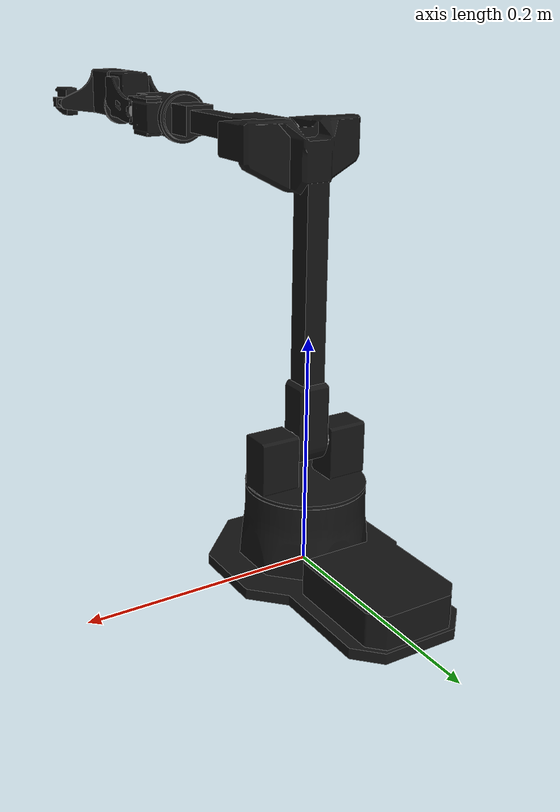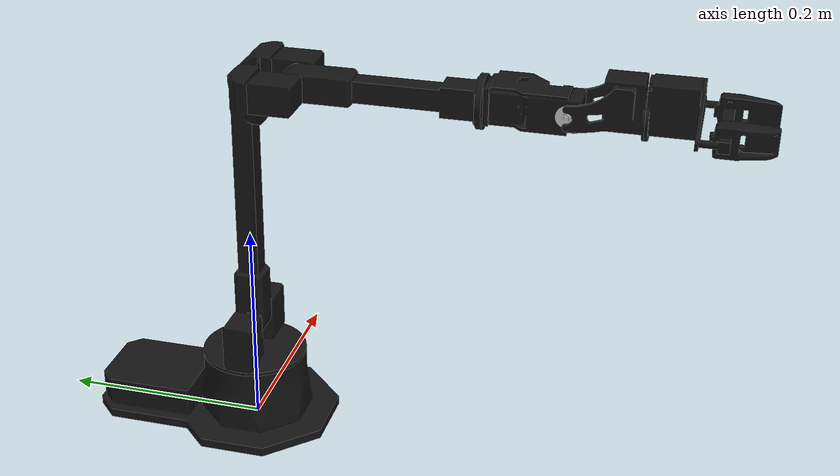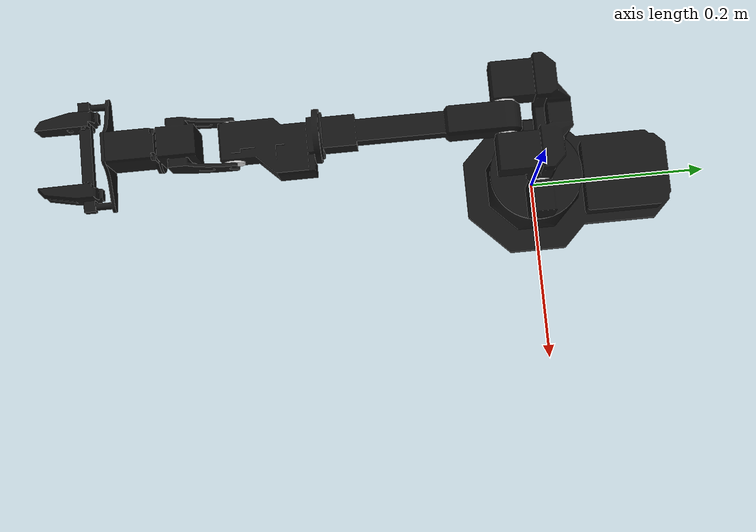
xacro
<?xml version="1.0"?>
<robot name="wx250s" xmlns:xacro="http://ros.org/wiki/xacro">

  <xacro:include filename="$(find wx250s_description)/urdf/parts/base/base.xacro"/>
  <xacro:include filename="$(find wx250s_description)/urdf/parts/shoulder/shoulder.xacro"/>
  <xacro:include filename="$(find wx250s_description)/urdf/parts/upper_arm/upper_arm.xacro"/>
  <xacro:include filename="$(find wx250s_description)/urdf/parts/forearm/forearm.xacro"/>
  <xacro:include filename="$(find wx250s_description)/urdf/parts/upper_forearm/upper_forearm.xacro"/>
  <xacro:include filename="$(find wx250s_description)/urdf/parts/lower_forearm/lower_forearm.xacro"/>
  <xacro:include filename="$(find wx250s_description)/urdf/parts/wrist/wrist.xacro"/>
  <xacro:include filename="$(find wx250s_description)/urdf/parts/gripper/gripper.xacro"/>
  <xacro:include filename="$(find wx250s_description)/urdf/parts/gripper_bar/gripper_bar.xacro"/>
  <xacro:include filename="$(find wx250s_description)/urdf/parts/left_finger/left_finger.xacro"/>
  <xacro:include filename="$(find wx250s_description)/urdf/parts/right_finger/right_finger.xacro"/>

  <xacro:property name="PI" value="3.14159274"/>

  <link name="world"/>
  <xacro:base parent="world">
    <origin xyz="0 0 0" rpy="0 0 0" />
  </xacro:base>

  <xacro:sholder parent="base_link">
    <origin xyz="0.0 0.0 0.069" rpy="0 0 0" /> <!-- xyz="0.0 0.0 0.072" -->
    <axis xyz="0 0 1"/>
  </xacro:sholder>

  <xacro:upper_arm parent="sholder_link">
    <origin xyz="0.0 0.0 0.03865" rpy="0 0 0" />
    <axis xyz="1 0 0"/>
  </xacro:upper_arm>

  <xacro:upper_forearm parent="upper_arm_link">
    <origin xyz="0 -0.04975 0.25" rpy="0 0 ${-PI/2}" />
    <axis xyz="0 1 0"/>
  </xacro:upper_forearm>

  <xacro:lower_forearm parent="upper_forearm_link">
    <origin xyz="0.171 0 0" rpy="${PI} 0 0" />
    <axis xyz="1 0 0"/>
  </xacro:lower_forearm>

  <xacro:wrist parent="lower_forearm_link">
    <origin xyz="0.075 0 0" rpy="0 ${PI} ${PI/2}" />
    <axis xyz="1 0 0"/>
  </xacro:wrist>

  <xacro:gripper parent="wrist_link">
    <origin xyz="0 -0.161 0" rpy="0 0 0" /> <!-- xyz="0 -0.065 0" -->
    <axis xyz="0 1 0"/>
  </xacro:gripper>

  <xacro:gripper_bar parent="gripper_link">
    <origin xyz="0 0 0" rpy="0 0 0" /> <!-- xyz="-0.0145 0 0" -->
  </xacro:gripper_bar>

  <xacro:left_finger parent="gripper_bar_link">
    <origin xyz="0.04 0.03 0" rpy="0 0 ${PI/2}" />
    <axis xyz="0 1 0"/>
  </xacro:left_finger>

  <xacro:right_finger parent="gripper_bar_link">
    <origin xyz="-0.04 0.03 0" rpy="${PI} 0 ${PI/2}" />
    <axis xyz="0 1 0"/>
  </xacro:right_finger>

</robot>

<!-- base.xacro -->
<robot xmlns:xacro="http://ros.org/wiki/xacro">

  <xacro:macro name="base" params="parent *joint_origin">
	  <joint name="base_link_joint" type="fixed">
	    <xacro:insert_block name="joint_origin"/>
	    <parent link="${parent}"/>
	    <child link="base_link"/>
	  </joint>

	<link name="base_link">
	  <visual>
		  <geometry>
		    <mesh filename="package://wx250s_description/meshes/DAE/base/base.dae"/>
		  </geometry>
	  </visual>
	  <collision>
		  <geometry>
		    <mesh filename="package://wx250s_description/meshes/STL/base/base.stl"/>
		  </geometry>
	  </collision>
	  <inertial>
		  <origin xyz="0 0 0"/>
		  <mass value="27"/>
		<inertia ixx="2.91" ixy="0" ixz="0" iyy="18.03" iyz="0" izz="20.95" />
	  </inertial>
          <surface>
            <friction>
              <ode>
                <mu>0.8</mu>
                <mu2>0.8</mu2>
                <kp>1e15</kp>
                <kd>1e13</kd>
              </ode>
            </friction>
            <bounce>
              <restitution_coefficient>0.01</restitution_coefficient>
              <threshold>10</threshold>
            </bounce>
            <contact>
              <ode>
                <max_vel>0.01</max_vel>
                <minDepth>0</minDepth>
                <contact_surface_layer>0</contact_surface_layer>
              </ode>
            </contact>
          </surface>
	</link>
  </xacro:macro>

</robot>

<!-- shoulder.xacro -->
<robot xmlns:xacro="http://ros.org/wiki/xacro">

  <xacro:macro name="sholder" params="parent *joint_origin *joint_axis">
	<joint name="waist" type="revolute">
	  <xacro:insert_block name="joint_origin"/>
	  <parent link="${parent}"/>
	  <child link="sholder_link"/>
          <limit effort="100" velocity="100" lower="-3.14" upper = "3.14"/>
          <dynamics damping="0.1" friction="0.1"/>
	  <xacro:insert_block name="joint_axis"/>
	</joint>

	<link name="sholder_link">
	  <visual>
		  <geometry>
		    <mesh filename="package://wx250s_description/meshes/DAE/shoulder/shoulder.dae"/>
		  </geometry>
	  </visual>
	  <collision>
		  <geometry>
		    <mesh filename="package://wx250s_description/meshes/STL/shoulder/shoulder.stl"/>
		  </geometry>
	  </collision>
	  <inertial>
		<origin xyz="0.0000223482 0.0000414609 0.0066287000"/>
		<mass value="0.480879"/>
		<inertia ixx="0.222" ixy="0" ixz="0" iyy="0.395" iyz="0" izz="0.222"/>
	  </inertial>
          <surface>
            <friction>
              <ode>
                <mu1>1.2</mu1>
                <mu2>1.2</mu2>
                <kp>1e15</kp>
                <kd>1e13</kd>
              </ode>
            </friction>
            <bounce>
              <restitution_coefficient>0.01</restitution_coefficient>
              <threshold>0</threshold>
            </bounce>
            <contact>
              <ode>
                <max_vel>10</max_vel>
              </ode>
            </contact>
          </surface>
	</link>
  </xacro:macro>

</robot>

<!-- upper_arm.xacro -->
<robot xmlns:xacro="http://ros.org/wiki/xacro">

  <xacro:macro name="upper_arm" params="parent *joint_origin *joint_axis">
	<joint name="sholder" type="revolute">
	  <xacro:insert_block name="joint_origin"/>
	  <parent link="${parent}"/>
	  <child link="upper_arm_link"/>
          <limit effort="100" velocity="100" lower="-3.14" upper = "3.14"/>
          <dynamics damping="0.1" friction="0.1"/>
	  <xacro:insert_block name="joint_axis"/>
	</joint>

	<link name="upper_arm_link">
	  <visual>
		  <geometry>
		    <mesh filename="package://wx250s_description/meshes/DAE/upper_arm/upper_arm.dae"/>
		  </geometry>
	  </visual>
	  <collision>
		  <geometry>
		    <mesh filename="package://wx250s_description/meshes/STL/upper_arm/upper_arm.stl"/>
		  </geometry>
	  </collision>
	  <inertial>
		<origin xyz="0.0 0.0 0.0"/>
		<mass value="0.298"/>
		<inertia ixx="0.002176" ixy="-0.0000030658" ixz="0.0" iyy="0.00005757" iyz="0.0" izz="0.002186"/>
	  </inertial>
          <surface>
            <friction>
              <ode>
                <mu1>1.2</mu1>
                <mu2>1.2</mu2>
                <kp>1e15</kp>
                <kd>1e13</kd>
              </ode>
            </friction>
            <bounce>
              <restitution_coefficient>0.01</restitution_coefficient>
              <threshold>0</threshold>
            </bounce>
            <contact>
              <ode>
                <max_vel>10</max_vel>
              </ode>
            </contact>
          </surface>
	</link>
  </xacro:macro>

</robot>

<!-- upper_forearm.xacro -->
<robot xmlns:xacro="http://ros.org/wiki/xacro">

  <xacro:macro name="upper_forearm" params="parent *joint_origin *joint_axis">
	<joint name="elbow" type="revolute">
	  <xacro:insert_block name="joint_origin"/>
	  <parent link="${parent}"/>
	  <child link="upper_forearm_link"/>
          <limit effort="100" velocity="100" lower="-3.14" upper = "3.14"/>
          <dynamics damping="0.1" friction="0.1"/>
	  <xacro:insert_block name="joint_axis"/>
	</joint>

	<link name="upper_forearm_link">
	  <visual>
		  <geometry>
		    <mesh filename="package://wx250s_description/meshes/DAE/upper_forearm/upper_forearm.dae"/>
		  </geometry>
	  </visual>
	  <collision>
		  <geometry>
		    <mesh filename="package://wx250s_description/meshes/STL/upper_forearm/upper_forearm.stl"/>
		  </geometry>
	  </collision>
	  <inertial>
		<origin xyz="0.1079630000 0.0001158760 0"/>
		<mass value="0.234589"/>
		<inertia ixx="0.00003971" ixy="0.0000023528" ixz="0.0" iyy="0.0008878" iyz="0.0" izz="0.000888"/>
	  </inertial>
          <surface>
            <friction>
              <ode>
                <mu1>1.2</mu1>
                <mu2>1.2</mu2>
                <kp>1e15</kp>
                <kd>1e13</kd>
              </ode>
            </friction>
            <bounce>
              <restitution_coefficient>0.01</restitution_coefficient>
              <threshold>0</threshold>
            </bounce>
            <contact>
              <ode>
                <max_vel>10</max_vel>
              </ode>
            </contact>
          </surface>
	</link>
  </xacro:macro>

</robot>

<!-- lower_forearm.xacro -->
<robot xmlns:xacro="http://ros.org/wiki/xacro">

  <xacro:macro name="lower_forearm" params="parent *joint_origin *joint_axis">
	<joint name="forearm_roll" type="revolute">
	  <xacro:insert_block name="joint_origin"/>
	  <parent link="${parent}"/>
	  <child link="lower_forearm_link"/>
          <limit effort="100" velocity="100" lower="-3.14" upper = "3.14"/>
          <dynamics damping="0.1" friction="0.1"/>
	  <xacro:insert_block name="joint_axis"/>
	</joint>

	<link name="lower_forearm_link">
	  <visual>
		  <geometry>
		    <mesh filename="package://wx250s_description/meshes/DAE/lower_forearm/lower_forearm.dae"/>
		  </geometry>
	  </visual>
	  <collision>
		  <geometry>
		    <mesh filename="package://wx250s_description/meshes/STL/lower_forearm/lower_forearm.stl"/>
		  </geometry>
	  </collision>
	  <inertial>
		<origin xyz="0.0374395000 0.0052225200 0"/>
		<mass value="0.220991"/>
		<inertia ixx="0.00006369" ixy="-0.00002292" ixz="0.0" iyy="0.0001677" iyz="0.0" izz="0.0001834"/>
	  </inertial>
          <surface>
            <friction>
              <ode>
                <mu1>1.2</mu1>
                <mu2>1.2</mu2>
                <kp>1e15</kp>
                <kd>1e13</kd>
              </ode>
            </friction>
            <bounce>
              <restitution_coefficient>0.01</restitution_coefficient>
              <threshold>0</threshold>
            </bounce>
            <contact>
              <ode>
                <max_vel>10</max_vel>
              </ode>
            </contact>
          </surface>
	</link>
  </xacro:macro>

</robot>

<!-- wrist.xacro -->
<robot xmlns:xacro="http://ros.org/wiki/xacro">

  <xacro:macro name="wrist" params="parent *joint_origin *joint_axis">
	<joint name="wrist_angle" type="revolute">
	  <xacro:insert_block name="joint_origin"/>
	  <parent link="${parent}"/>
	  <child link="wrist_link"/>
          <limit effort="100" velocity="100" lower="-3.14" upper = "3.14"/>
          <dynamics damping="0.1" friction="0.1"/>
	  <xacro:insert_block name="joint_axis"/>
	</joint>

	<link name="wrist_link">
	  <visual>
		  <geometry>
		    <mesh filename="package://wx250s_description/meshes/DAE/wrist/wrist.dae"/>
		  </geometry>
	  </visual>
	  <collision>
		  <geometry>
		    <mesh filename="package://wx250s_description/meshes/STL/wrist/wrist.stl"/>
		  </geometry>
	  </collision>
	  <inertial>
		<origin xyz="0.0 0.0 0.0"/>
		<mass value="0.085"/>
		<inertia ixx="0.00003082" ixy="0.0000000191" ixz="0.0000000023" iyy="0.00002822" iyz="0.0000025481" izz="0.00003152"/>
	  </inertial>
          <surface>
            <friction>
              <ode>
                <mu1>1.2</mu1>
                <mu2>1.2</mu2>
                <kp>1e15</kp>
                <kd>1e13</kd>
              </ode>
            </friction>
            <bounce>
              <restitution_coefficient>0.01</restitution_coefficient>
              <threshold>0</threshold>
            </bounce>
            <contact>
              <ode>
                <max_vel>10</max_vel>
              </ode>
            </contact>
          </surface>
	</link>
  </xacro:macro>

</robot>

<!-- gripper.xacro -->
<robot xmlns:xacro="http://ros.org/wiki/xacro">

  <xacro:macro name="gripper" params="parent *joint_origin *joint_axis">
	<joint name="wrist_rotate" type="revolute">
	  <xacro:insert_block name="joint_origin"/>
	  <parent link="${parent}"/>
	  <child link="gripper_link"/>
          <limit effort="100" velocity="100" lower="-3.14" upper = "3.14"/>
          <dynamics damping="0.1" friction="0.1"/>
	  <xacro:insert_block name="joint_axis"/>
	</joint>

	<link name="gripper_link">
	  <visual>
		  <geometry>
		    <mesh filename="package://wx250s_description/meshes/DAE/gripper/gripper.dae"/>
		  </geometry>
	  </visual>
	  <collision>
		  <geometry>
		    <mesh filename="package://wx250s_description/meshes/STL/gripper/gripper.stl"/>
		  </geometry>
	  </collision>
	  <inertial>
		<origin xyz="0.0 0.0 0.0"/>
		<mass value="0.25"/>
		<inertia ixx="0.00002537" ixy="0.0" ixz="0.0" iyy="0.00001836" iyz="0.000000434" izz="0.00001674"/>
	  </inertial>
          <surface>
            <friction>
              <ode>
                <mu1>1.2</mu1>
                <mu2>1.2</mu2>
                <kp>1e15</kp>
                <kd>1e13</kd>
              </ode>
            </friction>
            <bounce>
              <restitution_coefficient>0.01</restitution_coefficient>
              <threshold>0</threshold>
            </bounce>
            <contact>
              <ode>
                <max_vel>10</max_vel>
              </ode>
            </contact>
          </surface>
	</link>
  </xacro:macro>

</robot>

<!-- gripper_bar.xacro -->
<robot xmlns:xacro="http://ros.org/wiki/xacro">

  <xacro:macro name="gripper_bar" params="parent *joint_origin">
	<joint name="gripper_bar" type="fixed">
	  <xacro:insert_block name="joint_origin"/>
	  <parent link="${parent}"/>
	  <child link="gripper_bar_link"/>
	</joint>

	<link name="gripper_bar_link">
	  <visual>
		  <geometry>
		    <mesh filename="package://wx250s_description/meshes/DAE/gripper_bar/gripper_bar.dae"/>
		  </geometry>
	  </visual>
	  <collision>
		  <geometry>
		    <mesh filename="package://wx250s_description/meshes/STL/gripper_bar/gripper_bar.stl"/>
		  </geometry>
	  </collision>
	  <inertial>
		<origin xyz="0.0 0.0 0.0"/>
		<mass value="0.25"/>
		<inertia ixx="0.00002537" ixy="0.0" ixz="0.0" iyy="0.00001836" iyz="0.000000434" izz="0.00001674"/>
	  </inertial>
          <surface>
            <friction>
              <ode>
                <mu1>1.2</mu1>
                <mu2>1.2</mu2>
                <kp>1e15</kp>
                <kd>1e13</kd>
              </ode>
            </friction>
            <bounce>
              <restitution_coefficient>0.01</restitution_coefficient>
              <threshold>0</threshold>
            </bounce>
            <contact>
              <ode>
                <max_vel>10</max_vel>
              </ode>
            </contact>
          </surface>
	</link>
  </xacro:macro>

</robot>

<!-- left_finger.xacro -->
<robot xmlns:xacro="http://ros.org/wiki/xacro">

  <xacro:macro name="left_finger" params="parent *joint_origin *joint_axis">
	<joint name="left_finger_joint" type="prismatic">
	  <xacro:insert_block name="joint_origin"/>
	  <parent link="${parent}"/>
	  <child link="left_finger_link"/>
          <limit effort="10" velocity="1" lower="0" upper = "0.023"/>
          <dynamics damping="0.005" friction="0.039"/>
	  <xacro:insert_block name="joint_axis"/>
	</joint>

	<link name="left_finger_link">
	  <visual>
		  <geometry>
		    <mesh filename="package://wx250s_description/meshes/DAE/finger/gripper_finger.dae"/>
		  </geometry>
	  </visual>
	  <collision>
		  <geometry>
		    <mesh filename="package://wx250s_description/meshes/STL/finger/gripper_finger.stl"/>
		  </geometry>
	  </collision>
	  <inertial>
		<origin xyz="0.0 0.0 0.0"/>
		<mass value="0.016"/>
		<inertia ixx="0.000004731" ixy="-0.000000456" ixz="0.0" iyy="-0.000000456" iyz="0.0" izz="0.0000037467"/>
	  </inertial>
          <surface>
            <friction>
              <ode>
                <mu1>1.2</mu1>
                <mu2>1.2</mu2>
                <kp>1e15</kp>
                <kd>1e13</kd>
              </ode>
            </friction>
            <bounce>
              <restitution_coefficient>0.01</restitution_coefficient>
              <threshold>0</threshold>
            </bounce>
            <contact>
              <ode>
                <max_vel>10</max_vel>
              </ode>
            </contact>
          </surface>
	</link>
  </xacro:macro>

</robot>

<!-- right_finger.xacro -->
<robot xmlns:xacro="http://ros.org/wiki/xacro">

  <xacro:macro name="right_finger" params=" parent *joint_origin *joint_axis">
	<joint name="right_finger_joint" type="prismatic">
	  <xacro:insert_block name="joint_origin"/>
	  <parent link="${parent}"/>
	  <child link="right_finger_link"/>
          <limit effort="10" velocity="1" lower="0" upper = "0.023"/>
          <dynamics damping="0.005" friction="0.039"/>
	  <xacro:insert_block name="joint_axis"/>
    <mimic joint="left_finger_joint" />
	</joint>

	<link name="right_finger_link">
	  <visual>
		  <geometry>
		    <mesh filename="package://wx250s_description/meshes/DAE/finger/gripper_finger.dae"/>
		  </geometry>
	  </visual>
	  <collision>
		  <geometry>
		    <mesh filename="package://wx250s_description/meshes/STL/finger/gripper_finger.stl"/>
		  </geometry>
	  </collision>
	  <inertial>
		<origin xyz="0.0 0.0 0.0"/>
		<mass value="0.016"/>
		<inertia ixx="0.000004731" ixy="-0.000000456" ixz="0.0" iyy="-0.000000456" iyz="0.0" izz="0.0000037467"/>
	  </inertial>
          <surface>
            <friction>
              <ode>
                <mu1>1.2</mu1>
                <mu2>1.2</mu2>
                <kp>1e15</kp>
                <kd>1e13</kd>
              </ode>
            </friction>
            <bounce>
              <restitution_coefficient>0.01</restitution_coefficient>
              <threshold>0</threshold>
            </bounce>
            <contact>
              <ode>
                <max_vel>10</max_vel>
              </ode>
            </contact>
          </surface>
	</link>
  </xacro:macro>

</robot>
